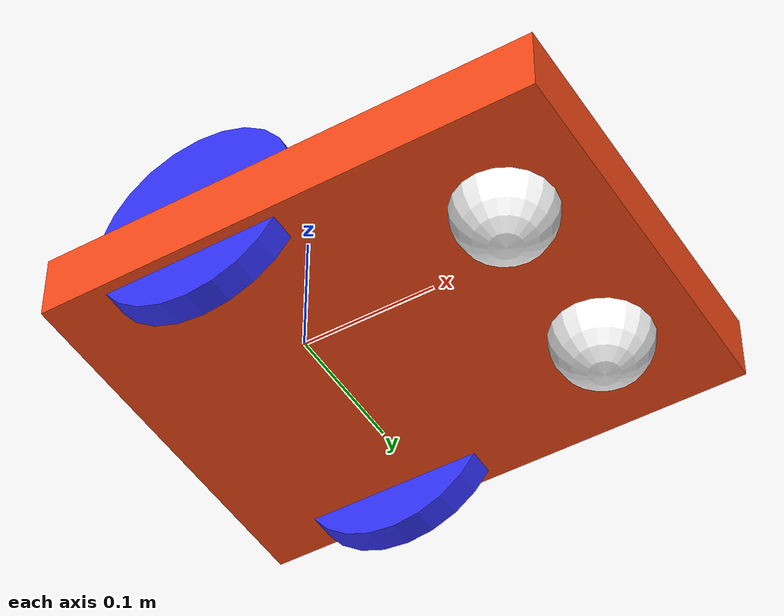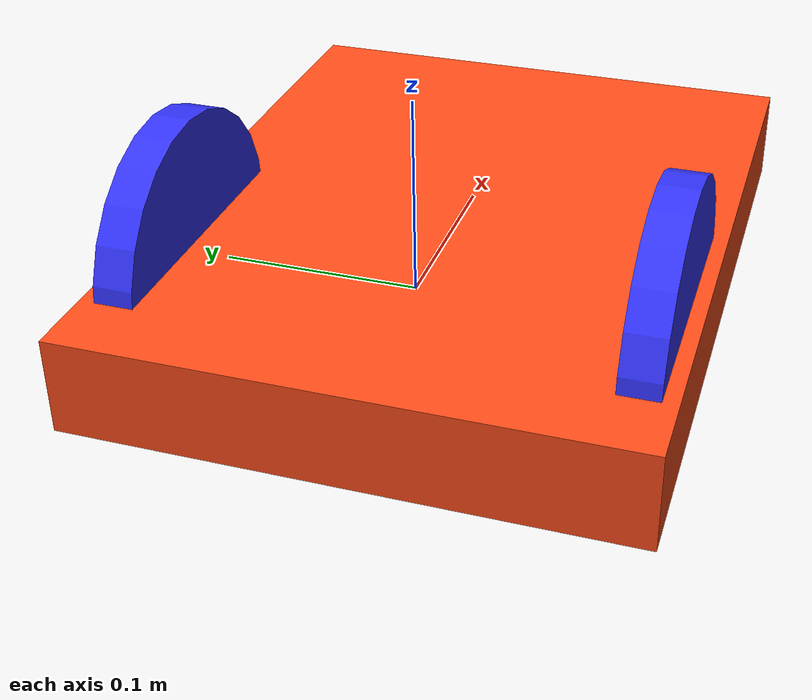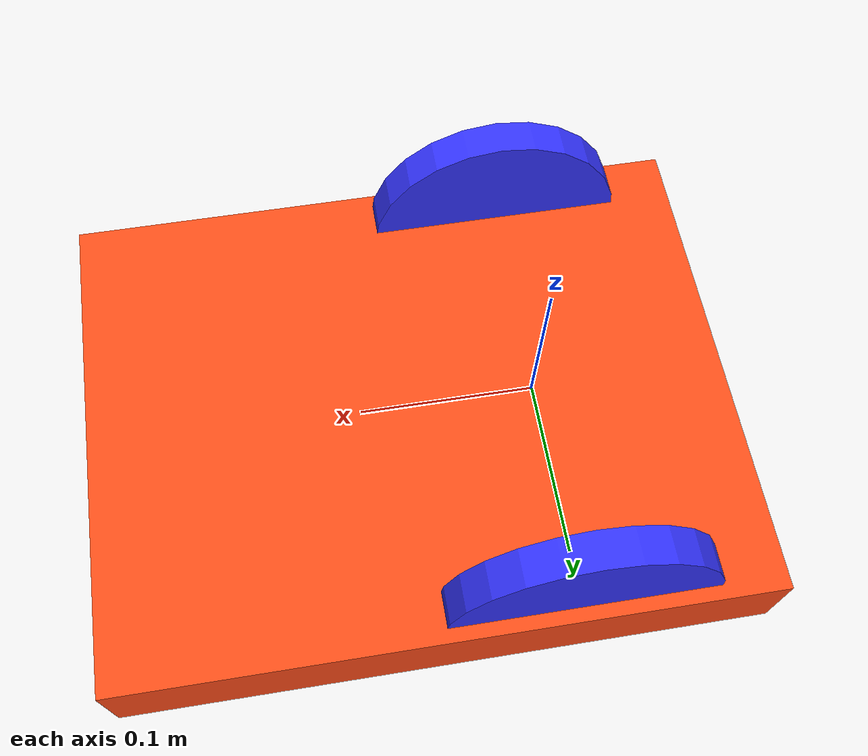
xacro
<?xml version="1.0"?>
<robot xmlns:xacro="http://www.ros.org/wiki/xacro" >

    <xacro:include filename="inertial_macros.xacro"/>

    <!-- Updated properties -->
    <xacro:property name="chassis_length" value="0.364"/>
    <xacro:property name="chassis_width" value="0.284"/>
    <xacro:property name="chassis_height" value="0.05"/>
    <xacro:property name="chassis_mass" value="4.0"/>

    <xacro:property name="wheel_radius" value="0.075"/>
    <xacro:property name="wheel_thickness" value="0.02"/>
    <xacro:property name="wheel_mass" value="0.1"/>
    <xacro:property name="wheel_offset_x" value="0"/>
    <xacro:property name="wheel_offset_y" value="0.12426"/>
    <xacro:property name="wheel_offset_z" value="0"/>

    <xacro:property name="caster_wheel_radius" value="0.036"/>
    <xacro:property name="caster_wheel_mass" value="0.1"/>
    <xacro:property name="caster_wheel_offset_x" value="0.2985"/>
    <xacro:property name="caster_wheel_offset_z" value="0.001"/>

    <!-- Materials -->
    <material name="white">
        <color rgba="1 1 1 1" />
    </material>
    <material name="orange">
        <color rgba="1 0.3 0.1 1"/>
    </material>
    <material name="blue">
        <color rgba="0.2 0.2 1 1"/>
    </material>
    <material name="black">
        <color rgba="0 0 0 1"/>
    </material>
    <material name="red">
        <color rgba="1 0 0 1"/>
    </material>

    <!-- BASE LINK -->
    <link name="base_link"/>

    <!-- BASE_FOOTPRINT LINK -->
    <joint name="base_footprint_joint" type="fixed">
        <parent link="base_link"/>
        <child link="base_footprint"/>
        <origin xyz="0 0 0" rpy="0 0 0"/>
    </joint>
    <link name="base_footprint"/>

    <!-- CHASSIS LINK -->
    <joint name="chassis_joint" type="fixed">
        <parent link="base_link"/>
        <child link="chassis"/>
        <origin xyz="-0.1095 0 -0.039"/>
    </joint>

    <link name="chassis">
        <visual>
            <origin xyz="${chassis_length/2} 0 ${chassis_height/2}"/>
            <geometry>
                <box size="${chassis_length} ${chassis_width} ${chassis_height}"/>
            </geometry>
            <material name="orange"/>
        </visual>
        <collision>
            <origin xyz="${chassis_length/2} 0 ${chassis_height/2}"/>
            <geometry>
                <box size="${chassis_length} ${chassis_width} ${chassis_height}"/>
            </geometry>
        </collision>
        <xacro:inertial_box mass="${chassis_mass}" x="${chassis_length}" y="${chassis_width}" z="${chassis_height}">
            <origin xyz="${chassis_length/2} 0 ${chassis_height/2}" rpy="0 0 0"/>
        </xacro:inertial_box>
    </link>

    <gazebo reference="chassis">
        <material>Gazebo/Orange</material>
    </gazebo>

    <!-- LEFT WHEEL JOINT -->
    <joint name="left_wheel_joint" type="continuous">
        <parent link="base_link"/>
        <child link="left_wheel"/>
        <origin xyz="0 ${wheel_offset_y} ${-wheel_offset_z}" rpy="-${pi/2} 0 0" />
        <axis xyz="0 0 1"/>
    </joint>

    <link name="left_wheel">
        <visual>
            <geometry>
                <cylinder radius="${wheel_radius}" length="${wheel_thickness}"/>
            </geometry>
            <material name="blue"/>
        </visual>
        <collision>
            <geometry>
                <sphere radius="${wheel_radius}"/>
            </geometry>
        </collision>
        <xacro:inertial_cylinder mass="${wheel_mass}" length="${wheel_thickness}" radius="${wheel_radius}">
            <origin xyz="0 0 0" rpy="0 0 0"/>
        </xacro:inertial_cylinder>
    </link>

	<gazebo reference="left_wheel">
	    <material>Gazebo/Blue</material>
	    <mu1>20</mu1>
	    <mu2>20</mu2>
	    <damping>0.5</damping>
	</gazebo>

    <!-- RIGHT WHEEL JOINT -->
    <joint name="right_wheel_joint" type="continuous">
        <parent link="base_link"/>
        <child link="right_wheel"/>
        <origin xyz="0 ${-wheel_offset_y} ${-wheel_offset_z}" rpy="${pi/2} 0 0" />
        <axis xyz="0 0 -1"/>
    </joint>

    <link name="right_wheel">
        <visual>
            <geometry>
                <cylinder radius="${wheel_radius}" length="${wheel_thickness}"/>
            </geometry>
            <material name="blue"/>
        </visual>
        <collision>
            <geometry>
                <sphere radius="${wheel_radius}"/>
            </geometry>
        </collision>
        <xacro:inertial_cylinder mass="${wheel_mass}" length="${wheel_thickness}" radius="${wheel_radius}">
            <origin xyz="0 0 0" rpy="0 0 0"/>
        </xacro:inertial_cylinder>
    </link>

        <gazebo reference="right_wheel">
	    <material>Gazebo/Blue</material>
	    <mu1>20</mu1>
	    <mu2>20</mu2>
	    <damping>0.5</damping>
	</gazebo>

    <!-- CASTER WHEEL LEFT -->
    <joint name="caster_wheel_left_joint" type="fixed">
        <parent link="chassis"/>
        <child link="caster_wheel_left"/>
        <origin xyz="${caster_wheel_offset_x} 0.06375 ${caster_wheel_offset_z}"/>
    </joint>

    <link name="caster_wheel_left">
        <visual>
            <geometry>
                <sphere radius="${caster_wheel_radius}"/>
            </geometry>
            <material name="white"/>
        </visual>
        <collision>
            <geometry>
                <sphere radius="${caster_wheel_radius}"/>
            </geometry>
        </collision>
        <xacro:inertial_sphere mass="${caster_wheel_mass}" radius="${caster_wheel_radius}">
            <origin xyz="0 0 0" rpy="0 0 0"/>
        </xacro:inertial_sphere>
    </link>

    <gazebo reference="caster_wheel_left">
        <material>Gazebo/White</material>
        <mu1 value="0.001"/>
        <mu2 value="0.001"/>
    </gazebo>

    <!-- CASTER WHEEL RIGHT -->
    <joint name="caster_wheel_right_joint" type="fixed">
        <parent link="chassis"/>
        <child link="caster_wheel_right"/>
        <origin xyz="${caster_wheel_offset_x} -0.06375 ${caster_wheel_offset_z}"/>
    </joint>

    <link name="caster_wheel_right">
        <visual>
            <geometry>
                <sphere radius="${caster_wheel_radius}"/>
            </geometry>
            <material name="white"/>
        </visual>
        <collision>
            <geometry>
                <sphere radius="${caster_wheel_radius}"/>
            </geometry>
        </collision>
        <xacro:inertial_sphere mass="${caster_wheel_mass}" radius="${caster_wheel_radius}">
            <origin xyz="0 0 0" rpy="0 0 0"/>
        </xacro:inertial_sphere>
    </link>

    <gazebo reference="caster_wheel_right">
        <material>Gazebo/White</material>
        <mu1 value="0.001"/>
        <mu2 value="0.001"/>
    </gazebo>

</robot>
